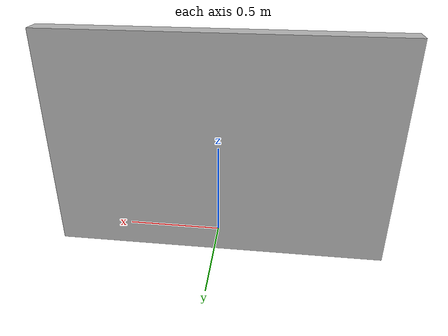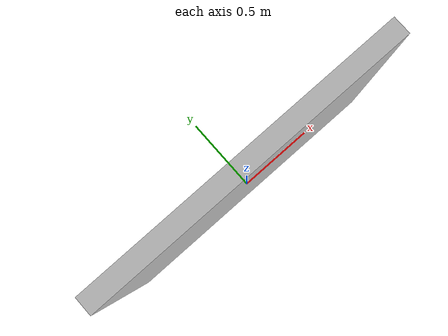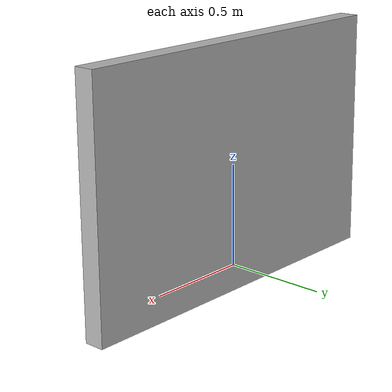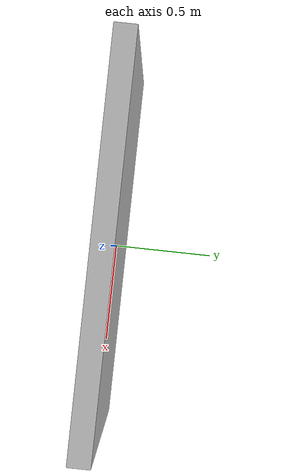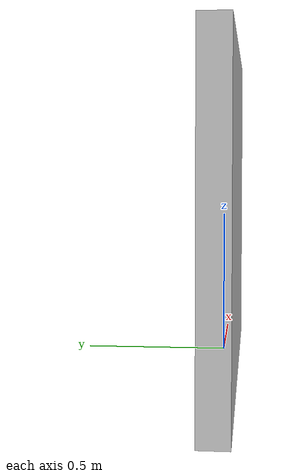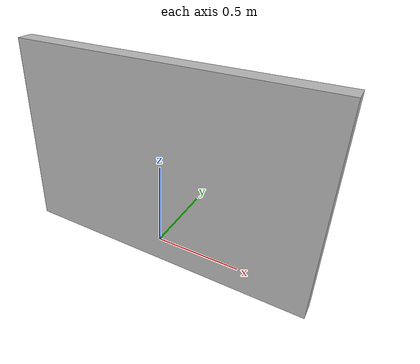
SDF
<?xml version="1.0" ?>
<sdf version="1.5">
  <model name="morgan_freeman">
    <link name="link">
      <inertial>
        <pose>0 -0.1 0.95 0 0 0</pose>
        <mass>0.0001</mass>
        <inertia>
          <ixx>0.01</ixx>
          <ixy>0</ixy>
          <ixz>0</ixz>
          <iyy>0.01</iyy>
          <iyz>0</iyz>
          <izz>0.01</izz>
        </inertia>
      </inertial>

      <collision name="person">
        <pose>0 0 0.5 0 0 1.57</pose>
        <geometry>
          <mesh>
            <uri>model://morgan_freeman/meshes/morgan.dae</uri>
          </mesh>
        </geometry>
      </collision>

      <visual name="visual">
        <pose>0 0 0.5 0 0 1.57</pose>
        <geometry>
          <mesh>
            <uri>model://morgan_freeman/meshes/morgan.dae</uri>
          </mesh>
        </geometry>
      </visual>
    </link>
  </model>
</sdf>
